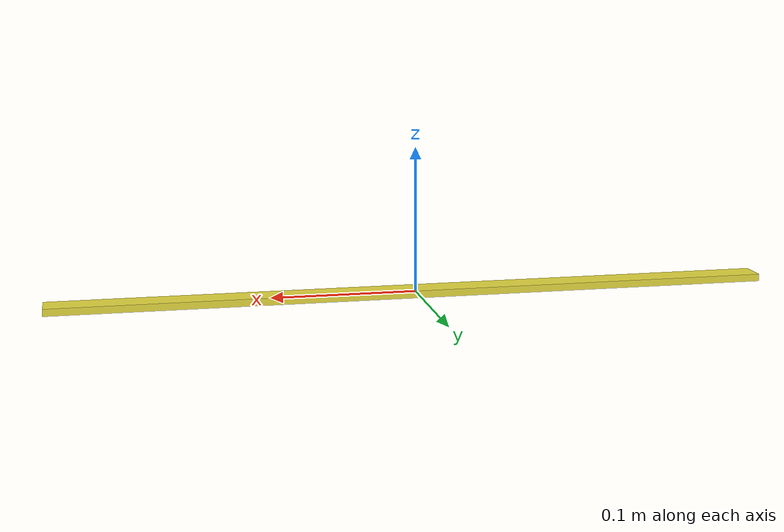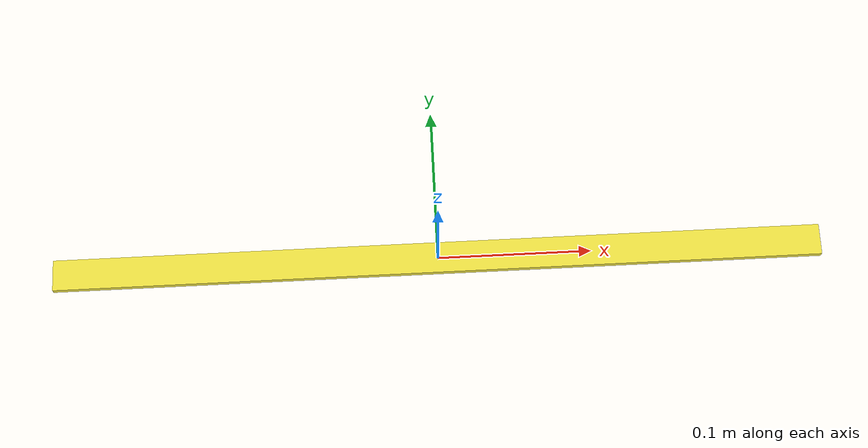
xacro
<?xml version="1.0"?>
<robot name="3FingersRobot" xmlns:xacro="http://www.ros.org/wiki.xacro">
	<xacro:property name="pole_len" value="0.5"/>
	<xacro:property name="pole_width" value="0.02"/>
	<xacro:property name="pole_thick" value="0.005"/>
	<xacro:property name="ground_len" value="1.0" />
	<xacro:property name="ground_thick" value="0.01" />
	<xacro:property name="dist_contact_pts" value="0.15" />
    <xacro:property name="pole_mass" value="0.5" />

	<material name="white">
		<color rgba="0.8 0.8 0.8 1"/>
	</material>

	<material name="blue">
		<color rgba="0 0 0.8 1"/>
	</material>

	<material name="green">
		<color rgba="0 0.8 0 1"/>
	</material>

	<xacro:macro name="default_inertial" params="mass">
		<inertial>
			<mass value="${mass}"/>
			<inertia ixx="1e-3" ixy="0.0" ixz="0.0" iyy="1e-3" iyz="0.0" izz="1e-3"/>
		</inertial>
	</xacro:macro>

	<link name="base_link">
		<xacro:default_inertial mass="0"/>
	</link>

	<!-- dummy link for 2D constraints -->
	<link name="dummy_link_1">
		<inertial>
			<mass value="0"/>
			<inertia ixx="1e-3" ixy="0.0" ixz="0.0" iyy="1e-3" iyz="0.0" izz="1e-3"/>
		</inertial>
	</link>
	<link name="dummy_link_2">
		<inertial>
			<mass value="0"/>
			<inertia ixx="1e-3" ixy="0.0" ixz="0.0" iyy="1e-3" iyz="0.0" izz="1e-3"/>
		</inertial>
	</link>
	<link name="target_pole">
		<visual>
			<geometry>
				<box size="${pole_len} ${pole_width} ${pole_thick}"/>
			</geometry>
			<origin xyz="0 0 0"/>
		</visual>
		<collision>
			<geometry>
				<box size="${pole_len} ${pole_width} ${pole_thick}"/>
			</geometry>
			<origin xyz="0 0 0"/>
		</collision>
        <inertial>
            <origin xyz="0 0 0"/>
            <mass value="${pole_mass}" />
            <inertia ixx="${1/12.0 * pole_mass * (pole_width*pole_width + pole_thick*pole_thick)}"
                iyy="${1/12.0 * pole_mass * (pole_len*pole_len + pole_thick*pole_thick)}"
                izz="${1/12.0 * pole_mass * (pole_len*pole_len + pole_width*pole_width)}"
                ixy="0" ixz="0" iyz="0" />
        </inertial>
	</link>
	<joint name="base_link_prismatic1" type="prismatic">
		<parent link="base_link"/>
		<child link="dummy_link_1"/>
		<origin xyz="0 0 0"/>
		<axis xyz="1 0 0"/>
        <dynamics damping="0" friction="0"/>
        <limit effort="10000.0" lower="-100" upper="100" velocity="5"/>
	</joint>
	<joint name="base_link_prismatic2" type="prismatic">
		<parent link="dummy_link_1"/>
		<child link="dummy_link_2"/>
		<origin xyz="0 0 0"/>
		<axis xyz="0 1 0"/>
        <limit effort="10000.0" lower="-100" upper="100" velocity="5"/>
        <dynamics damping="0" friction="0"/>
	</joint>
	<joint name="base_link_revolute" type="revolute">
		<parent link="dummy_link_2"/>
		<child link="target_pole"/>
		<origin xyz="0 0 0"/>
		<axis xyz="0 0 1"/>
        <limit effort="10000.0" lower="-3.14" upper="3.14" velocity="5"/>
        <dynamics damping="0" friction="0"/>
	</joint>

</robot>
